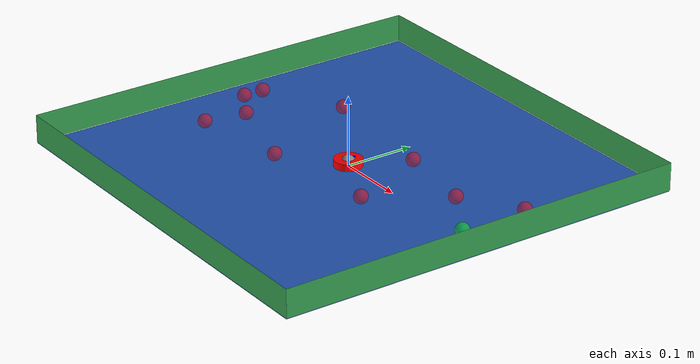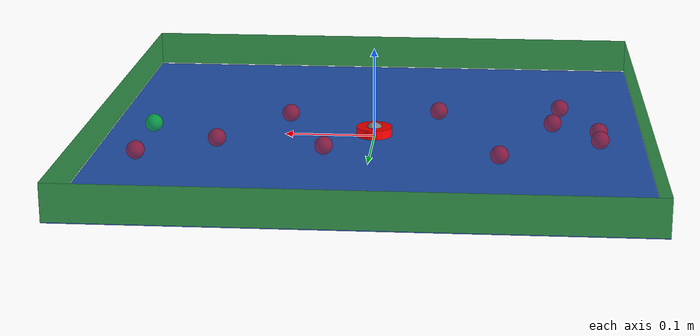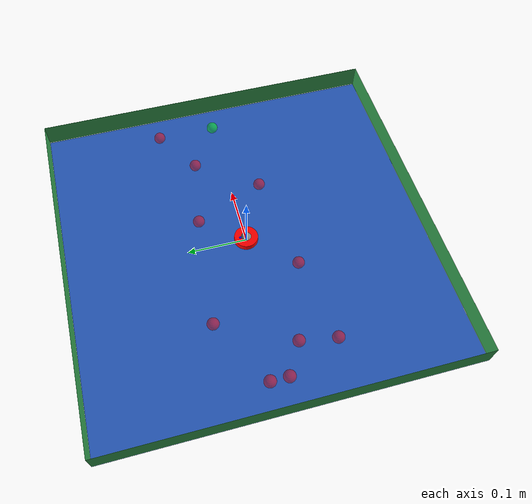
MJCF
<mujoco model="Particle Control">
  <include file="../common.xml"/>
  <!-- modified from: https://github.com/google-deepmind/dm_control/blob/main/dm_control/suite/point_mass.xml -->
  <include file="point_robot.xml" />

  <size memory="10K"/>

  <custom>
    <!-- agent -->
    <numeric name="task_risk" data="1" />
    <numeric name="agent_planner" data="0" />
    <numeric name="agent_horizon" data="0.5" />
    <numeric name="agent_timestep" data="0.01" />
    <numeric name="agent_policy_width" data="0.0015" />
    <numeric name="sampling_spline_points" data="5" />
    <numeric name="sampling_exploration" data="0.01" />
    <numeric name="gradient_spline_points" data="5" />

    <!-- estimator -->
    <numeric name="estimator" data="0" />
    <numeric name="estimator_sensor_start" data="3" />
    <numeric name="estimator_number_sensor" data="3" />
    <numeric name="estimator_timestep" data="0.01" />
    <numeric name="batch_configuration_length" data="10" />
    <numeric name="batch_scale_prior" data="1.0e-3" />
  </custom>

  <sensor>
    <!-- cost -->
    <user name="Position" dim="3" user="0 5.0 0.0 10.0" />
    <user name="Velocity" dim="3" user="0 0.1 0.0 1.0" />
    <user name="Control" dim="3" user="0 0.1 0.0 1.0" />

    <!-- estimator -->
    <jointpos name="x" joint="root_x" />
    <jointpos name="y" joint="root_y" />
    <jointpos name="z" joint="root_theta" />
    <accelerometer name="acc" site="tip" />

    <!-- trace -->
    <framepos name="trace0" objtype="body" objname="rigidmass"/>

    <!-- residual -->
    <framepos name="position" objtype="body" objname="rigidmass"/>
    <framelinvel name="velocity" objtype="body" objname="rigidmass"/>
  </sensor>
</mujoco>

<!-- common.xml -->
<mujoco>

    <visual>
        <headlight ambient=".4 .4 .4" diffuse=".8 .8 .8" specular="0.1 0.1 0.1"/>
        <map znear=".01"/>
        <quality shadowsize="2048"/>
        <global elevation="-15"/>
    </visual>

    <asset>
        <texture name="blue_grid" type="2d" builtin="checker" rgb1=".02 .14 .44" rgb2=".27 .55 1" width="300" height="300" mark="edge" markrgb="1 1 1"/>
        <material name="blue_grid" texture="blue_grid" texrepeat="1 1" texuniform="true" reflectance=".2"/>

        <texture name="grey_grid" type="2d" builtin="checker" rgb1=".26 .26 .26" rgb2=".6 .6 .6" width="300" height="300" mark="edge" markrgb="1 1 1"/>
        <material name="grey_grid" texture="grey_grid" texrepeat="1 1" texuniform="true" reflectance=".2"/>
        <texture name="skybox" type="skybox" builtin="gradient" rgb1=".66 .79 1" rgb2=".9 .91 .93" width="800" height="800"/>

        <material name="self" rgba=".7 .5 .3 1"/>
        <material name="self_default" rgba=".7 .5 .3 1"/>
        <material name="self_highlight" rgba="0 .5 .3 1"/>
        <material name="effector" rgba=".7 .4 .2 1"/>
        <material name="effector_default" rgba=".7 .4 .2 1"/>
        <material name="effector_highlight" rgba="0 .5 .3 1"/>
        <material name="decoration" rgba=".2 .6 .3 1"/>
        <material name="eye" rgba="0 .2 1 1"/>
        <material name="target" rgba=".6 .3 .3 1"/>
        <material name="target_default" rgba=".6 .3 .3 1"/>
        <material name="target_highlight" rgba=".6 .3 .3 .4"/>
        <material name="site" rgba=".5 .5 .5 .3"/>
    </asset>

    <size memory="1M"/>

    <statistic extent="0.4" center="0.3 0.1 0"/>

    <visual>
        <quality shadowsize="8192"/>
        <global azimuth="180" elevation="-30"/>
    </visual>

    <default>
        <geom friction="1.0"/>
    </default>

    <compiler angle="radian" autolimits="true"/>

    <asset>
        <mesh name="apple" file="../../shared_assets/apple/apple.obj" />
        <mesh name="apple_contact0" file="../../shared_assets/apple/contact0.stl"  />
        <mesh name="apple_contact1" file="../../shared_assets/apple/contact1.stl"  />

        <mesh name="doorknob" file="../../shared_assets/doorknob/doorknob.obj" />

        <mesh name="flashlight" file="../../shared_assets/flashlight/flashlight.obj" />
        <mesh name="flashlight_contact0" file="../../shared_assets/flashlight/contact0.stl"  />
        <mesh name="flashlight_contact1" file="../../shared_assets/flashlight/contact1.stl"  />

        <mesh name="hammer" file="../../shared_assets/hammer/hammer.obj" />
        <mesh name="hammer_contact0" file="../../shared_assets/hammer/contact0.stl"  />
        <mesh name="hammer_contact1" file="../../shared_assets/hammer/contact1.stl"  />

        <mesh name="phone" file="../../shared_assets/phone/phone.obj" />
        <mesh name="phone_contact0" file="../../shared_assets/phone/contact0.stl"  />
        <mesh name="phone_contact1" file="../../shared_assets/phone/contact1.stl"  />
        <mesh name="phone_contact2" file="../../shared_assets/phone/contact2.stl"  />

        <mesh name="stapler" file="../../shared_assets/stapler/stapler.obj" />
        <mesh name="stapler_contact0" file="../../shared_assets/stapler/contact0.stl"  />
        <mesh name="stapler_contact1" file="../../shared_assets/stapler/contact1.stl"  />
        <mesh name="stapler_contact2" file="../../shared_assets/stapler/contact2.stl"  />
        <mesh name="stapler_contact3" file="../../shared_assets/stapler/contact3.stl"  />
        <mesh name="stapler_contact4" file="../../shared_assets/stapler/contact4.stl"  />

        <mesh name="waterbottle" file="../../shared_assets/waterbottle/waterbottle.obj" />
        <mesh name="waterbottle_contact0" file="../../shared_assets/waterbottle/contact0.stl"  />
        <mesh name="waterbottle_contact1" file="../../shared_assets/waterbottle/contact1.stl"  />
    </asset>

</mujoco>

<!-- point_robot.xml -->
<mujoco model="Particle">
  <option timestep="0.01">
    <flag contact="enable"/>
  </option>

  <default>
    <joint type="hinge" axis="0 0 1" limited="true" range="-.29 .29" damping="1"/>
    <motor gear=".1" ctrlrange="-1 1" ctrllimited="true"/>
  </default>

  <worldbody>
    <body name="goal" mocap="true" pos="0.25 0 0.01" quat="1 0 0 0">
        <geom type="sphere" name="goal" size=".01" contype="0" conaffinity="0" rgba="0 1 0 .5"/>
    </body>
    <body name="obstacle_0" mocap="true" pos="-0.25 0 0.01" quat="1 0 0 0">
      <geom type="sphere" name="obstacle_0" size=".01" rgba="1 0 0 .5"/>
    </body>
    <body name="obstacle_1" mocap="true" pos="0.17 0.05 0.01" quat="1 0 0 0">
        <geom type="sphere" name="obstacle_1" size=".01" rgba="1 0 0 .5"/>
    </body>
    <body name="obstacle_2" mocap="true" pos="0.1 -0.05 0.01" quat="1 0 0 0">
        <geom type="sphere" name="obstacle_2" size=".01" rgba="1 0 0 .5"/>
    </body>
    <body name="obstacle_3" mocap="true" pos="0.05 0.07 0.01" quat="1 0 0 0">
        <geom type="sphere" name="obstacle_3" size=".01" rgba="1 0 0 .5"/>
    </body>
    <body name="obstacle_4" mocap="true" pos="-0.07 -0.07 0.01" quat="1 0 0 0">
        <geom type="sphere" name="obstacle_4" size=".01" rgba="1 0 0 .5"/>
    </body>
    <body name="obstacle_5" mocap="true" pos="-0.14 0.09 0.01" quat="1 0 0 0">
      <geom type="sphere" name="obstacle_5" size=".01" rgba="1 0 0 .5"/>
    </body>
    <body name="obstacle_6" mocap="true" pos="-0.21 -0.09 0.01" quat="1 0 0 0">
      <geom type="sphere" name="obstacle_6" size=".01" rgba="1 0 0 .5"/>
    </body>
    <body name="obstacle_7" mocap="true" pos="-0.25 0.03 0.01" quat="1 0 0 0">
      <geom type="sphere" name="obstacle_7" size=".01" rgba="1 0 0 .5"/>
    </body>
    <body name="obstacle_8" mocap="true" pos="-0.2 -0.03 0.01" quat="1 0 0 0">
      <geom type="sphere" name="obstacle_8" size=".01" rgba="1 0 0 .5"/>
    </body>
    <body name="obstacle_9" mocap="true" pos="0.25 0.1 0.01" quat="1 0 0 0">
      <geom type="sphere" name="obstacle_9" size=".01" rgba="1 0 0 .5"/>
    </body>
    <light name="light" pos="0 0 1"/>
    <camera name="fixed" pos="0 0 .75" quat="1 0 0 0"/>
    <geom name="ground" type="plane" contype="0" conaffinity="0" pos="0 0 0" size=".3 .3 .1" material="blue_grid"/>
    <geom name="wall_x" type="plane" contype="0" conaffinity="0" pos="-.3 0 .02" zaxis="1 0 0"  size=".02 .3 .02" material="decoration"/>
    <geom name="wall_y" type="plane" contype="0" conaffinity="0" pos="0 -.3 .02" zaxis="0 1 0"  size=".3 .02 .02" material="decoration"/>
    <geom name="wall_neg_x" type="plane" contype="0" conaffinity="0" pos=".3 0 .02" zaxis="-1 0 0"  size=".02 .3 .02" material="decoration"/>
    <geom name="wall_neg_y" type="plane" contype="0" conaffinity="0" pos="0 .3 .02" zaxis="0 -1 0"  size=".3 .02 .02" material="decoration"/>

    <body name="rigidmass" pos="0 0 0.006">
      <camera name="cam0" pos="0 -0.3 0.3" xyaxes="1 0 0 0 0.7 0.7"/>
      <inertial pos="0 0 0" mass="0.1" diaginertia="1 1 1"/>
      <joint name="root_x" type="slide" pos="0 0 0" axis="1 0 0" range="-5 5"/>
      <body name="base_link_y">
        <inertial pos="0 0 0" mass="0.1" diaginertia="1 1 1"/>
        <joint name="root_y" type="slide" pos="0 0 0" axis="0 1 0" range="-5 5"/>
        <body name="base_link">
          <inertial pos="0 0.000497512 0.0500025" quat="1 -5.07614e-05 0 0" mass="0.1" diaginertia="3.50995 3.5 3.00995"/>
          <joint name="root_theta" pos="0 0 0" axis="0 0 1" range="-5 5"/>
          <geom name="rigidmass" type="cylinder" size="0.02 0.005" rgba="1 0 0 1"/>
          <geom type="cylinder" size="0.002 0.005" pos="0 0 0.001"/>
          <geom type="cylinder" size="0.002 0.0005" rgba="0 0 1 1" pos="0 0.01 0.00505"/>
          <site name="tip" pos="0 0 0" size="0.01"/> <!-- For accelerometer defined in task.xml -->
          <body name="lidar_link">
            <inertial pos="0 0 0" mass="100" diaginertia="1 1 1"/>
            <geom name="lidar_geom" type="cylinder" size="0.01 0.002" rgba="0 0 1 1"/>
            <body name="lidar_sensor_link"/>
          </body>
          <body name="feature_link">
            <inertial pos="0 0 0" mass="0.1" diaginertia="1 1 1"/>
            <geom type="cylinder" size="0.0001 0.002" rgba="0 1 0 1"/>
          </body>
        </body>
      </body>
    </body>
  </worldbody>

  <actuator>
    <velocity name="x_motor" joint="root_x" ctrllimited="true" ctrlrange="-2 2" kv="50"/>
    <velocity name="y_motor" joint="root_y" ctrllimited="true" ctrlrange="-2 2" kv="50"/>
    <velocity name="z_motor" joint="root_theta" ctrllimited="true" ctrlrange="-2 2" kv="50"/>
  </actuator>
</mujoco>
